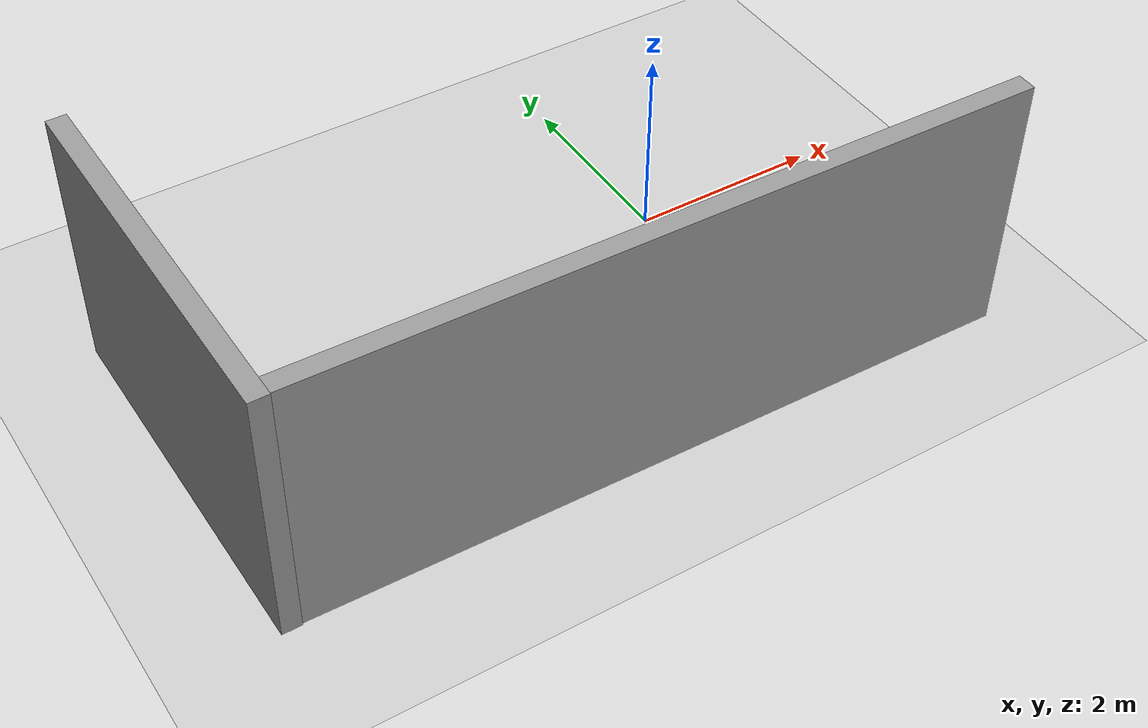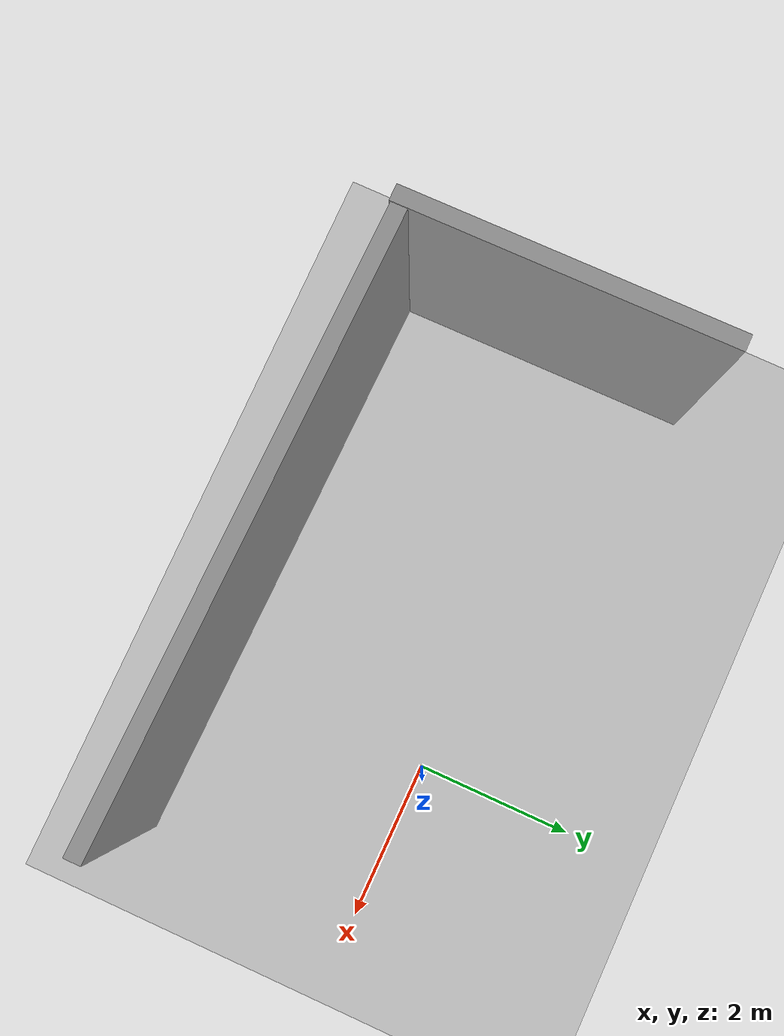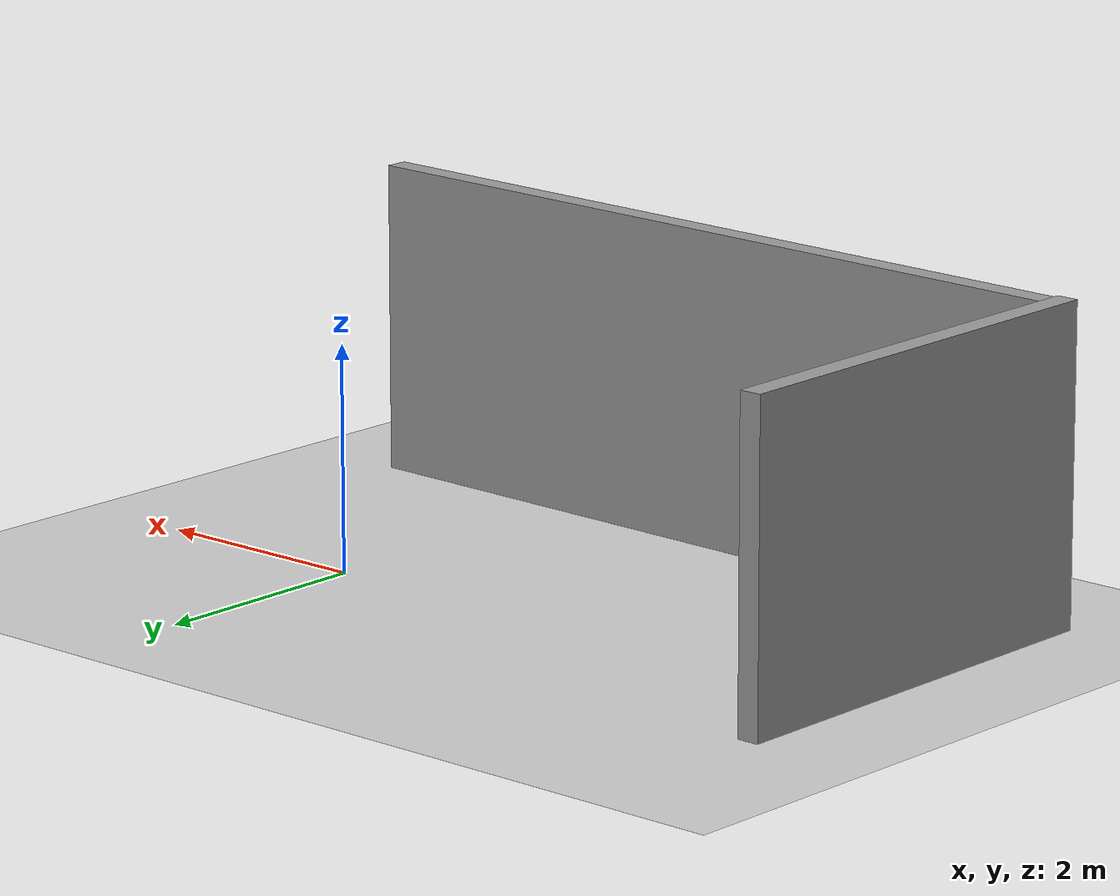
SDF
<sdf version="1.7">
 <world name="default">
  <model name="ground_plane">
   <static>1</static>
   <link name="link">
    <collision name="collision">
     <geometry><plane><normal>0 0 1</normal><size>100 100</size></plane></geometry>
     <surface>
      <contact><collide_bitmask>65535</collide_bitmask></contact>
      <friction><ode><mu>100</mu><mu2>50</mu2></ode></friction>
     </surface>
    </collision>
    <visual name="visual">
     <cast_shadows>0</cast_shadows>
     <geometry><plane><normal>0 0 1</normal><size>100 100</size></plane></geometry>
     <material>
      <script><uri>file://media/materials/scripts/gazebo.material</uri><name>Gazebo/Grey</name></script>
     </material>
    </visual>
   </link>
  </model>
  <model name="grey_wall_clone_0_clone">
   <static>1</static>
   <link name="link">
    <pose>0 0 1.4 0 -0 0</pose>
    <collision name="collision"><geometry><box><size>7.5 0.2 2.8</size></box></geometry></collision>
    <visual name="visual">
     <cast_shadows>0</cast_shadows>
     <geometry><box><size>7.5 0.2 2.8</size></box></geometry>
     <material>
      <script>
       <uri>https://fuel.ignitionrobotics.org/1.0/OpenRobotics/models/Grey Wall/2/files/materials/scripts</uri>
       <uri>https://fuel.ignitionrobotics.org/1.0/OpenRobotics/models/Grey Wall/2/files/materials/textures</uri>
       <name>vrc/grey_wall</name>
      </script>
     </material>
    </visual>
   </link>
   <pose>-1.68952 -2.76039 -0.02319 0 0 -0.018951</pose>
  </model>
  <model name="grey_wall_clone_0_clone_clon23re_clone">
   <link name="link">
    <pose>0 0 1.4 0 -0 0</pose>
    <inertial>
     <mass>1</mass>
     <inertia><ixx>1</ixx><ixy>0</ixy><ixz>0</ixz><iyy>1</iyy><iyz>0</iyz><izz>1</izz></inertia>
    </inertial>
    <visual name="visual">
     <cast_shadows>0</cast_shadows>
     <geometry><box><size>4 0.2 2.8</size></box></geometry>
     <material>
      <script>
       <uri>https://fuel.ignitionrobotics.org/1.0/OpenRobotics/models/Grey Wall/2/files/materials/scripts</uri>
       <uri>https://fuel.ignitionrobotics.org/1.0/OpenRobotics/models/Grey Wall/2/files/materials/textures</uri>
       <name>vrc/grey_wall</name>
      </script>
      <shader type="pixel"><normal_map>__default__</normal_map></shader>
      <ambient>1 1 1 1</ambient>
      <diffuse>1 1 1 1</diffuse>
      <specular>0 0 0 1</specular>
      <emissive>0 0 0 1</emissive>
     </material>
    </visual>
    <collision name="collision">
     <geometry><box><size>7.5 0.2 2.8</size></box></geometry>
     <surface>
      <friction>
       <ode><mu>1</mu><mu2>1</mu2><fdir1>0 0 0</fdir1><slip1>0</slip1><slip2>0</slip2></ode>
       <torsional>
        <coefficient>1</coefficient>
        <patch_radius>0</patch_radius>
        <surface_radius>0</surface_radius>
        <use_patch_radius>1</use_patch_radius>
        <ode><slip>0</slip></ode>
       </torsional>
      </friction>
      <bounce><restitution_coefficient>0</restitution_coefficient><threshold>1e+06</threshold></bounce>
      <contact>
       <collide_without_contact>0</collide_without_contact>
       <collide_without_contact_bitmask>1</collide_without_contact_bitmask>
       <collide_bitmask>1</collide_bitmask>
       <ode>
        <soft_cfm>0</soft_cfm>
        <soft_erp>0.2</soft_erp>
        <kp>1e+13</kp>
        <kd>1</kd>
        <max_vel>0.01</max_vel>
        <min_depth>0</min_depth>
       </ode>
       <bullet>
        <split_impulse>1</split_impulse>
        <split_impulse_penetration_threshold>-0.01</split_impulse_penetration_threshold>
        <soft_cfm>0</soft_cfm>
        <soft_erp>0.2</soft_erp>
        <kp>1e+13</kp>
        <kd>1</kd>
       </bullet>
      </contact>
     </surface>
    </collision>
   </link>
   <static>1</static>
   <pose>-5.4701 -0.80933 -0.01334 0 0 -1.56332</pose>
  </model>
 </world>
</sdf>
